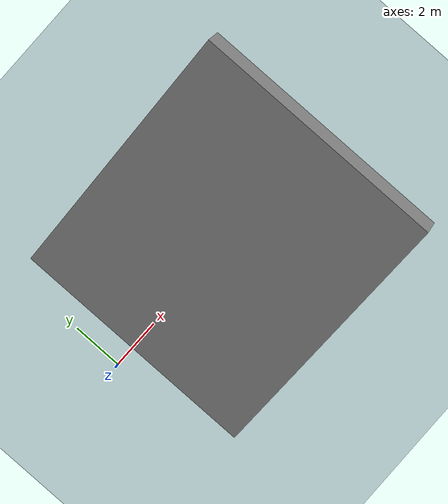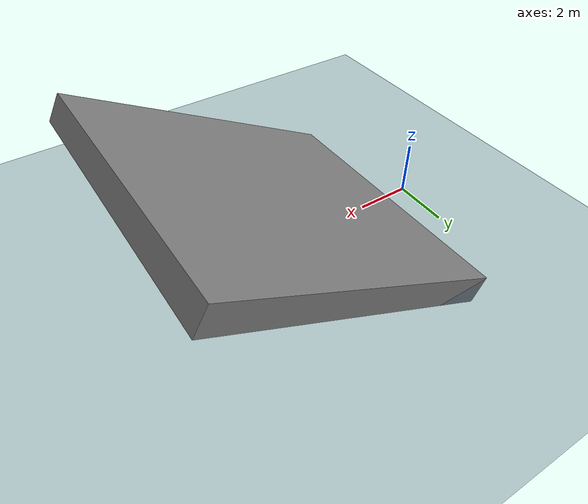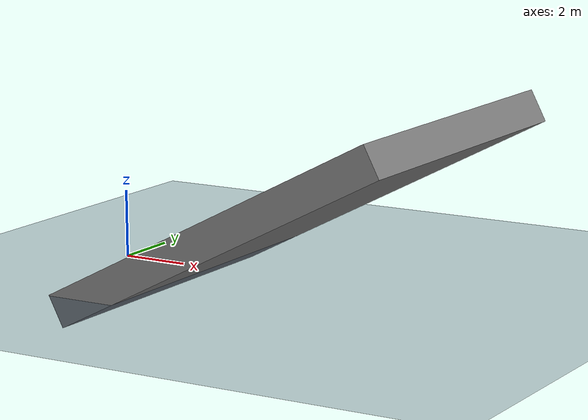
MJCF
<mujoco model="slope_9">
  <!-- Terrain Type: slope, Level: 9, Slope angle (degrees): 27.6096 -->
  <statistic center="0 0 0.1" extent="0.8" />
  <visual>
    <headlight diffuse="0.6 0.6 0.6" ambient="0.3 0.3 0.3" specular="0 0 0" />
    <rgba haze="0.15 0.25 0.35 1" />
    <global azimuth="-130" elevation="-20" />
  </visual>
  <asset>
    <texture type="skybox" builtin="gradient" rgb1="0.3 0.5 0.7" rgb2="0 0 0" width="512" height="3072" />
    <texture type="2d" name="groundplane" builtin="checker" mark="edge" rgb1="0.2 0.3 0.4" rgb2="0.1 0.2 0.3" markrgb="0.8 0.8 0.8" width="300" height="300" />
    <material name="groundplane" texture="groundplane" texuniform="true" texrepeat="5 5" reflectance="0.0" />
  </asset>
  <worldbody>
    <light pos="0 0 1.5" dir="0 0 -1" directional="true" />
    <geom name="floor" size="0 0 0.05" type="plane" material="groundplane" />
    <geom pos="6.031722002936844 0.0 2.17193689687028" type="box" size="5.642537106656898 5.0 0.5" quat="0.9711143615093542 0.0 -0.23861453616718223 0.0" />
  </worldbody>
</mujoco>
